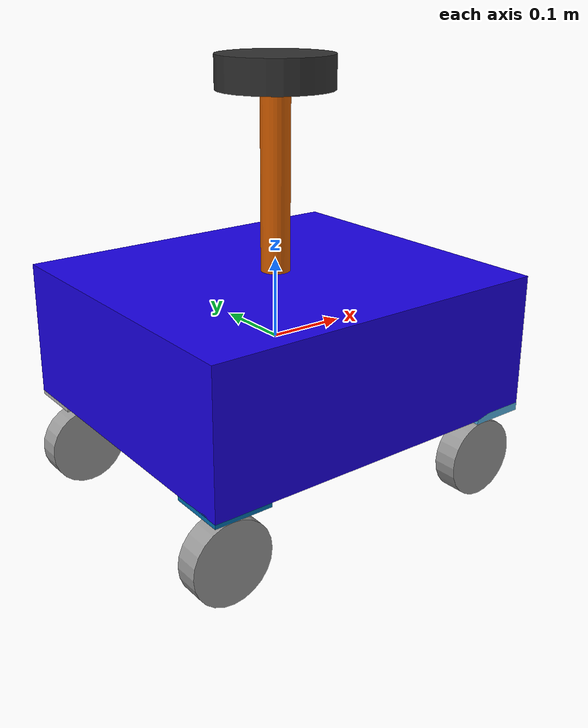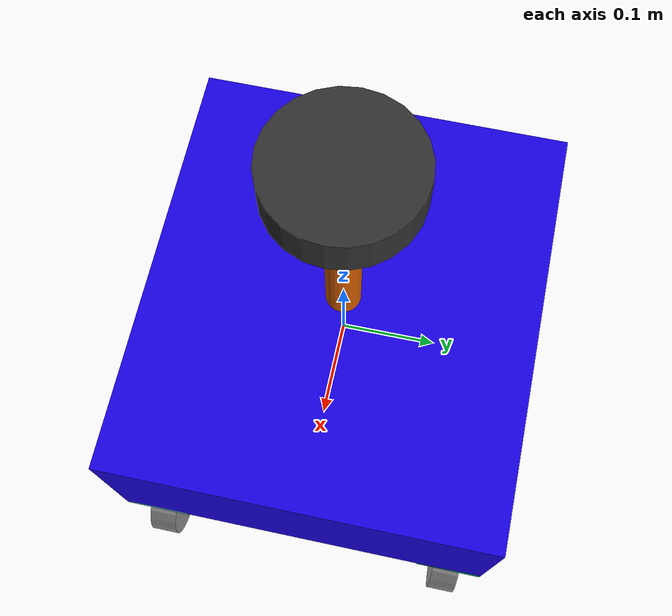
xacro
<?xml version="1.0"?>
<robot name="macroed" xmlns:xacro="http://ros.org/wiki/xacro">

<xacro:property name="length" value='0.45' />
<xacro:property name="width"  value='0.4' />
<xacro:property name='height' value='0.17' />
<xacro:property name="wheel_radius" value='0.05' />
<xacro:property name="wheel_width" value='0.03' />
<xacro:property name="sheet_length" value='0.07' />
<xacro:property name="sheet_width" value='0.07' />
<xacro:property name="sheet_height" value='0.01' />
<xacro:property name="c_radius" value='0.01'/>
<xacro:property name="c_height" value='0.05'/>
<xacro:property name="cylin_radius" value='0.07' />
<xacro:property name="cylin_height" value='0.04' />
<xacro:property name="rod_radius" value='0.018' />
<xacro:property name="rod_length" value='0.3'/>

<material name="blue">
    <color rgba="0.1 0.0 0.9 1"/>
</material>
<material name="grey">
    <color rgba="0.191 0.191 0.191 1"/>
</material>

<xacro:macro name="default_inertial" params="mass">
    <inertial>
      <mass value="${mass}" />
      <inertia ixx="1.0" ixy="0.0" ixz="0.0" iyy="1.0" iyz="0.0" izz="1.0" />
    </inertial>
  </xacro:macro>

<link name="base_link">
    <visual>
        <geometry>
           <box size="${length} ${width} ${height}"/>
        </geometry>
        <material name='blue'/>
    </visual>
    <collision>
        <geometry>
            <box size= "${length} ${width} ${height}"/>
        </geometry>
    </collision>
    <inertial>
        <mass value="5"/>
       <inertia ixx="0.07871" ixy="0" ixz="0" iyy="0.09642" iyz="0.0" izz="0.1510"/>
    </inertial>
</link>

<xacro:macro name="sheets" params="prefix suffix reflectx reflecty">
    <link name="${prefix}_${suffix}_sheet">
        <visual>
            <geometry>
                <box size="${sheet_length} ${sheet_width} ${sheet_height}"/>
            </geometry>
        </visual>
        <collision>
            <geometry>
                <box size="${sheet_length} ${sheet_width} ${sheet_height}"/>
            </geometry>
        </collision>
        <inertial>
            <mass value="0.01"/>
            <inertia ixx="0.000004167" ixy="0.0" ixz="0.0" iyy="0.000004167" iyz="0.0" izz="0.000008167"/>
        </inertial>

    </link>
    <joint name="${prefix}_${suffix}_sheet_joint" type="fixed">
        <parent link="base_link"/>
        <child link="${prefix}_${suffix}_sheet"/>
        <origin xyz="${(length-sheet_length)*0.5*reflectx} ${(width-sheet_width)*0.5*reflecty} -0.085" rpy="0.0 0.0 0.0"/>
    </joint>

    <link name="${prefix}_${suffix}_scylinder">
        <visual>
            <geometry>
                <cylinder radius="${c_radius}" length="${c_height}"/>
            </geometry>
        </visual>
        <collision>
                <geometry>
                    <cylinder radius="${c_radius}" length="${c_height}"/>
                </geometry>
        </collision>
        <inertial>
            <mass value="0.01"/>
           <inertia ixx="0.0000023333" ixy="0.0" ixz="0.0" iyy="0.0000023333" iyz="0.0" izz="0.0000005"/>
        </inertial>
    </link>
    <joint name="${prefix}_${suffix}_sheet_cylinder" type="fixed">
        <parent link="${prefix}_${suffix}_sheet"/>
        <child link="${prefix}_${suffix}_scylinder"/>
    </joint>

    <link name="${prefix}_${suffix}_wheel">
        <visual>
            <geometry>
                <cylinder radius="${wheel_radius}" length="${wheel_width}"/>
            </geometry>
        </visual>
        <collision>
                <geometry>
                    <cylinder radius="${wheel_radius}" length="${wheel_width}"/>
                </geometry>
        </collision>
        <inertial>
            <mass value="1"/>
           <inertia ixx="0.0007" ixy="0.0" ixz="0.0" iyy="0.0007" iyz="0.0" izz="0.00125"/>
        </inertial>
    </link>
    <joint name="${prefix}_${suffix}_scylinder_wheel" type="continuous">
        <axis xyz="0 0.0 1.0"/>
        <parent link="${prefix}_${suffix}_scylinder"/>
        <child link="${prefix}_${suffix}_wheel"/>
        <origin xyz="0.0 0.0 -0.07" rpy="1.57 0.0 0.0"/>
    </joint>
    <gazebo reference="${prefix}_${suffix}_wheel">
      <mu1 value="200.0"/>
      <mu2 value="100.0"/>
      <kp value="10000000.0" />
      <kd value="1.0" />
      <material>Gazebo/Grey</material>
    </gazebo>
    <transmission name="${prefix}_${suffix}_wheel_trans">
      <type>transmission_interface/SimpleTransmission</type>
      <actuator name="${prefix}_${suffix}_wheel_motor">
        <mechanicalReduction>1</mechanicalReduction>
      </actuator>
      <joint name="${prefix}_${suffix}_scylinder_wheel">
        <hardwareInterface>VelocityJointInterface</hardwareInterface>
      </joint>
    </transmission>
</xacro:macro>
<xacro:sheets prefix="left" suffix="front" reflectx="1" reflecty="-1" />
<xacro:sheets prefix="left" suffix="back" reflectx="-1" reflecty="-1"/>
 <xacro:sheets prefix="right" suffix="back" reflectx="-1" reflecty="1" />
<xacro:sheets prefix="right" suffix="front" reflectx="1" reflecty="1" />

<link name="rod">
<visual>
<geometry>
    <cylinder radius="${rod_radius}" length="${rod_length}"/>
</geometry>
<origin xyz="0.0 0.0 0.17"/>
</visual>
<collision>
    <geometry>
    <cylinder radius="${rod_radius}" length="${rod_length}"/>
    </geometry>
</collision>
<inertial>
    <mass value="1.75"/>
   <inertia ixx="0.007581" ixy="0.0" ixz="0.0" iyy="0.007581" iyz="0.0" izz="0.000162"/>
</inertial>
</link>

<joint name="base_to_rod" type="fixed">
    <parent link="base_link"/>
    <child link="rod"/>
</joint>

<link name="cylin">
    <visual>
        <geometry>
            <cylinder radius="${cylin_radius}" length="${cylin_height}"/>
        </geometry>
        <material name='grey'/>
    </visual>
    <collision>
        <geometry>
            <cylinder radius="${cylin_radius}" length="${cylin_height}"/>
        </geometry>
    </collision>
  <inertial>
      <mass value="0.65"/>
     <inertia ixx="0.000883" ixy="0.0" ixz="0.0" iyy="0.000883" iyz="0.0" izz="0.0015925"/>
  </inertial>
</link>
<joint name="rod_cylin" type="continuous">
    <axis xyz="0.0 0.0 1"/>
    <parent link="rod"/>
    <child link="cylin"/>
    <origin xyz="0.0 0.0 0.32"/>
</joint>

<transmission name="cylin_trans">
    <type>transmission_interface/SimpleTransmission</type>
    <actuator name="$cylin_motor">
      <mechanicalReduction>1</mechanicalReduction>
    </actuator>
    <joint name="rod_cylin">
      <hardwareInterface>PositionJointInterface</hardwareInterface>
    </joint>
</transmission>

<gazebo>
    <plugin name="gazebo_ros_control" filename="libgazebo_ros_control.so">
      <robotNamespace>/</robotNamespace>
    </plugin>
</gazebo>
</robot>
